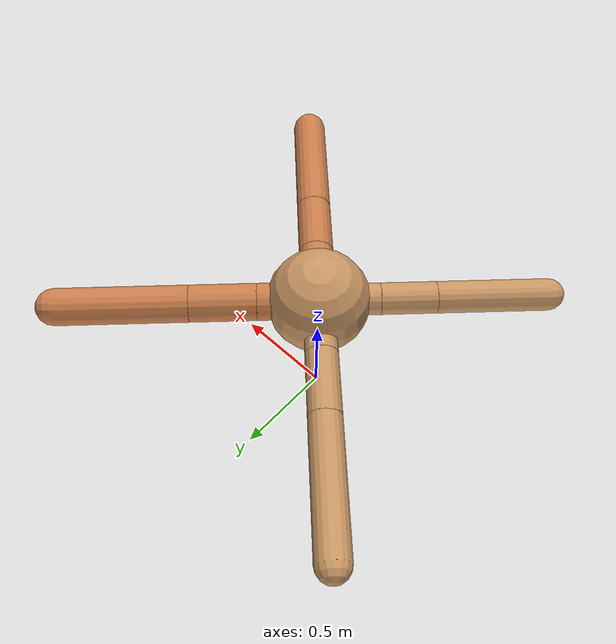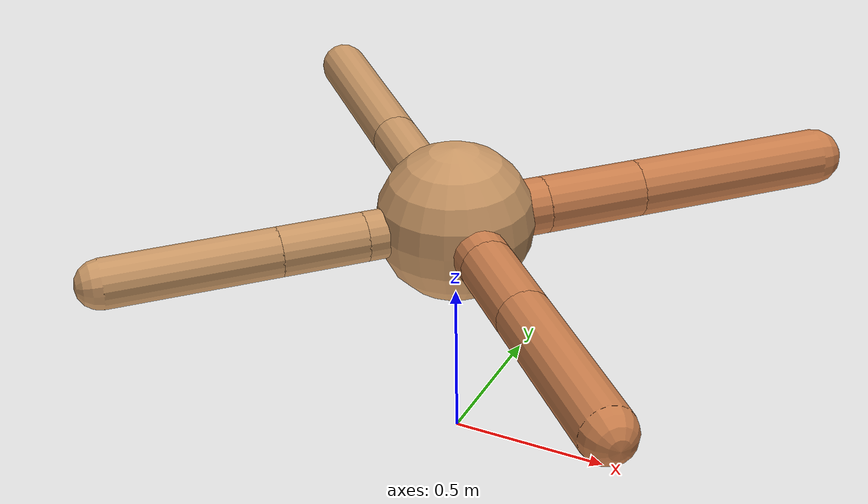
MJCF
<?xml version="1.0" ?>
<mujoco model="ant">

	<compiler angle="degree" coordinate="local" inertiafromgeom="true"/>

	<option integrator="RK4" timestep="0.01"/>

	<custom>

		<numeric data="0.0 0.0 0.55 1.0 0.0 0.0 0.0 0.0 1.0 0.0 -1.0 0.0 -1.0 0.0 1.0" name="init_qpos"/>

	</custom>

	<default>

		<joint armature="1" damping="1" limited="true"/>

		<geom conaffinity="0" condim="3" density="5.0" friction="1.5 0.1 0.1" margin="0.01" rgba="0.8 0.6 0.4 1"/>

	</default>

	<worldbody>

		<body name="torso" pos="0 0 0.75">

			<geom name="torso_geom" pos="0 0 0" size="0.24048286873493435" type="sphere"/>

			<!--joint armature="0" damping="0" limited="false" margin="0.01" name="root" pos="0 0 0" type="free"/-->

			<body name="front_left_leg" pos="0 0 0">

				<geom fromto="0 0 0 0.2 0.2 0" name="aux_1_geom" size="0.08697206617354289" type="capsule" rgba=".8 .5 .3 1"/>

				<body name="aux_1" pos="0.2 0.2 0">

					<joint axis="0 0 1" name="hip_1" pos="0.0 0.0 0.0" range="-40 40" type="hinge"/>

					<geom fromto="0 0 0 0.21789865367147354 0.21789865367147354 0" name="left_leg_geom" size="0.08697206617354289" type="capsule" rgba=".8 .5 .3 1"/>

					<body pos="0.21789865367147354 0.21789865367147354 0" name="front_left_foot">

						<joint axis="-1 1 0" name="ankle_1" pos="0.0 0.0 0.0" range="30 100" type="hinge"/>

						<geom fromto="0 0 0 0.4357973073429471 0.4357973073429471 0" name="left_ankle_geom" size="0.08697206617354289" type="capsule" rgba=".8 .5 .3 1"/>

					</body>

				</body>

			</body>

			<body name="front_right_leg" pos="0 0 0">

				<geom fromto="0 0 0 -0.2 0.2 0" name="aux_2_geom" size="0.07539803076870544" type="capsule"/>

				<body name="aux_2" pos="-0.2 0.2 0">

					<joint axis="0 0 1" name="hip_2" pos="0.0 0.0 0.0" range="-40 40" type="hinge"/>

					<geom fromto="0 0 0 -0.2112797856753489 0.2112797856753489 0" name="right_leg_geom" size="0.07539803076870544" type="capsule"/>

					<body pos="-0.2112797856753489 0.2112797856753489 0" name="front_right_foot">

						<joint axis="1 1 0" name="ankle_2" pos="0.0 0.0 0.0" range="-100 -30" type="hinge"/>

						<geom fromto="0 0 0 -0.4225595713506978 0.4225595713506978 0" name="right_ankle_geom" size="0.07539803076870544" type="capsule"/>

					</body>

				</body>

			</body>

			<body name="left_back_leg" pos="0 0 0">

				<geom fromto="0 0 0 -0.2 -0.2 0" name="aux_3_geom" size="0.0743099939954278" type="capsule"/>

				<body name="aux_3" pos="-0.2 -0.2 0">

					<joint axis="0 0 1" name="hip_3" pos="0.0 0.0 0.0" range="-40 40" type="hinge"/>

					<geom fromto="0 0 0 -0.1825446206190428 -0.1825446206190428 0" name="back_leg_geom" size="0.0743099939954278" type="capsule"/>

					<body pos="-0.1825446206190428 -0.1825446206190428 0" name="left_back_foot">

						<joint axis="-1 1 0" name="ankle_3" pos="0.0 0.0 0.0" range="-100 -30" type="hinge"/>

						<geom fromto="0 0 0 -0.3650892412380856 -0.3650892412380856 0" name="third_ankle_geom" size="0.0743099939954278" type="capsule"/>

					</body>

				</body>

			</body>

			<body name="right_back_leg" pos="0 0 0">

				<geom fromto="0 0 0 0.2 -0.2 0" name="aux_4_geom" size="0.08290309715124383" type="capsule" rgba=".8 .5 .3 1"/>

				<body name="aux_4" pos="0.2 -0.2 0">

					<joint axis="0 0 1" name="hip_4" pos="0.0 0.0 0.0" range="-40 40" type="hinge"/>

					<geom fromto="0 0 0 0.20070277195060846 -0.20070277195060846 0" name="rightback_leg_geom" size="0.08290309715124383" type="capsule" rgba=".8 .5 .3 1"/>

					<body pos="0.20070277195060846 -0.20070277195060846 0" name="right_back_foot">

						<joint axis="1 1 0" name="ankle_4" pos="0.0 0.0 0.0" range="30 100" type="hinge"/>

						<geom fromto="0 0 0 0.4014055439012169 -0.4014055439012169 0" name="fourth_ankle_geom" size="0.08290309715124383" type="capsule" rgba=".8 .5 .3 1"/>

					</body>

				</body>

			</body>

		</body>

	</worldbody>

	<actuator>

		<motor ctrllimited="true" ctrlrange="-1.0 1.0" joint="hip_4" gear="150"/>

		<motor ctrllimited="true" ctrlrange="-1.0 1.0" joint="ankle_4" gear="150"/>

		<motor ctrllimited="true" ctrlrange="-1.0 1.0" joint="hip_1" gear="150"/>

		<motor ctrllimited="true" ctrlrange="-1.0 1.0" joint="ankle_1" gear="150"/>

		<motor ctrllimited="true" ctrlrange="-1.0 1.0" joint="hip_2" gear="150"/>

		<motor ctrllimited="true" ctrlrange="-1.0 1.0" joint="ankle_2" gear="150"/>

		<motor ctrllimited="true" ctrlrange="-1.0 1.0" joint="hip_3" gear="150"/>

		<motor ctrllimited="true" ctrlrange="-1.0 1.0" joint="ankle_3" gear="150"/>

	</actuator>

</mujoco>
